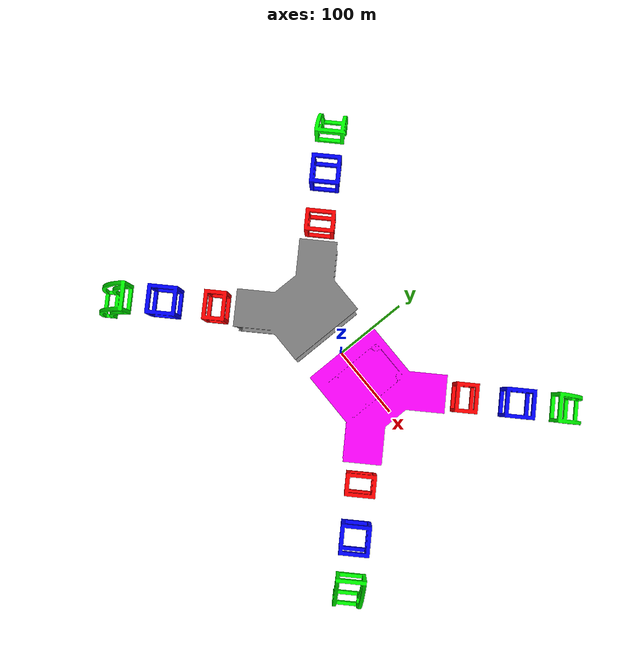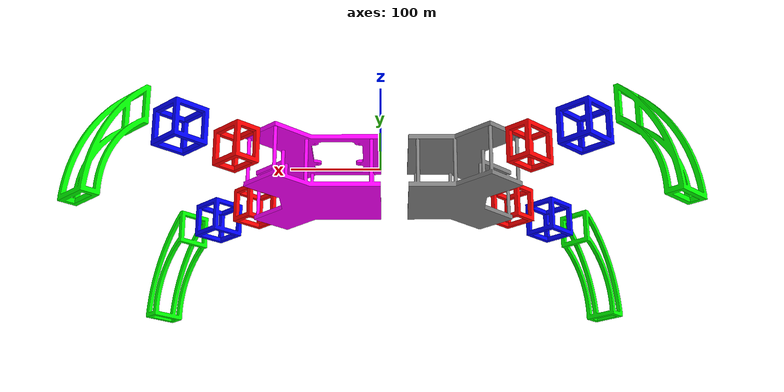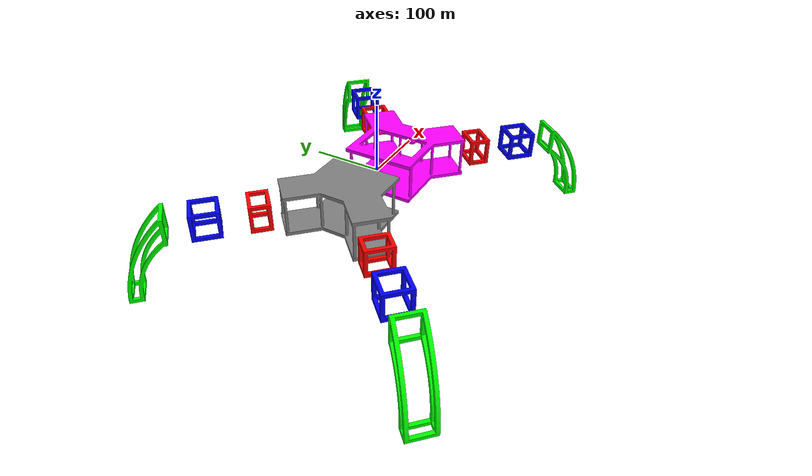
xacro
<?xml version="1.0"?>
<robot name="quaro-body" xmlns:xacro="http://ros.org/wiki/xacro">
  <xacro:property name="pi" value="3.1415"/>
  <xacro:include filename="$(find quaro_description)/urdf/colors.xacro"/>
  <xacro:include filename="$(find quaro_description)/urdf/leg.xacro"/>
  <!-- first link -->
  <link name="front">
    <visual>
      <geometry>
        <mesh filename="package://quaro_description/meshes/front.stl"/>
      </geometry>
      <material name="pink"/>
      <origin rpy="0 0 0" xyz="0 0 20"/>
    </visual>
  </link>

  <link name="back">
    <visual>
      <geometry>
        <mesh filename="package://quaro_description/meshes/back.stl"/>
      </geometry>
      <material name="gray"/>
      <origin rpy="0 0 0" xyz="-15 0 20"/>
    </visual>
  </link>

  <joint name="chest" type="revolute">
    <parent link="front"/>
    <child link="back"/>
    <origin rpy="0 0 0" xyz="-15 0 0"/>
    <axis xyz="0 1 0"/>
    <limit effort="1000.0" lower="${-pi/2}" upper="${pi/2}" velocity="0.5"/>
  </joint>

  <xacro:leg n="0" x="150" y="90" angle="${1*pi/4}" parent="front"/>
  <xacro:leg n="1" x="150" y="-90" angle="-${1*pi/4}" parent="front"/>
  <xacro:leg n="2" x="-140" y="90" angle="${3*pi/4}" parent="back"/>
  <xacro:leg n="3" x="-140" y="-90" angle="-${3*pi/4}" parent="back"/>

</robot>

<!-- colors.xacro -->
<robot name="quaro-colors" xmlns:xacro="http://ros.org/wiki/xacro">

<!-- Materials -->

<material name="black">
  <color rgba="0 0 0 1"/>
</material>

<material name="white">
  <color rgba="1 1 1 1"/>
</material>

<material name="gray">
  <color rgba="0.5 0.5 0.5 1"/>
</material>

<material name="blue">
  <color rgba="0 0 1 1"/>
</material>

<material name="blue_light">
  <color rgba="0 0 0.5 1"/>
</material>

<material name="red">
  <color rgba="1 0 0 1"/>
</material>

<material name="red_light">
  <color rgba="0.5 0 0 1"/>
</material>

<material name="green">
  <color rgba="0 1 0 1"/>
</material>

<material name="green_light">
  <color rgba="0 0.5 0 1"/>
</material>

<material name="cyan">
  <color rgba="1 1 0 1"/>
</material>

<material name="cyan_light">
  <color rgba="0.5 0.5 0 1"/>
</material>

<material name="turcoise">
  <color rgba="0 1 1 1"/>
</material>

<material name="turcoise_light">
  <color rgba="0 0.5 0.5 1"/>
</material>

<material name="pink">
  <color rgba="1 0 1 1"/>
</material>

<material name="pink_light">
  <color rgba="0.5 0 0.5 1"/>
</material>

</robot>

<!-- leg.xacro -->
<robot name="quaro-leg" xmlns:xacro="http://ros.org/wiki/xacro">
  <!-- parameter n is the leg number-->
  <xacro:macro name="leg" params="n x y angle parent">
  <!-- first link -->
  <link name="thigh${n}">
    <visual>
      <geometry>
        <mesh filename="package://quaro_description/meshes/thigh.stl"/>
      </geometry>
      <material name="red"/>
      <origin rpy="${pi/2} 0  ${pi/2}" xyz="-15 -20 -20"/>
    </visual>
  </link>

  <link name="shin${n}">
    <visual>
      <geometry>
        <mesh filename="package://quaro_description/meshes/shin.stl"/>
      </geometry>
      <material name="blue"/>
      <origin rpy="0 0 0" xyz="20 -20 -20"/>
    </visual>
  </link>

  <joint name="knee${n}" type="revolute">
    <parent link="thigh${n}"/>
    <child link="shin${n}"/>
    <origin rpy="${pi/2} 0 0" xyz="30 0 0"/>
    <axis xyz="0 0 1"/>
    <limit effort="1000.0" lower="${-pi/2}" upper="${pi/2}" velocity="0.5"/>
  </joint>

  <link name="foot${n}">
    <visual>
      <geometry>
        <mesh filename="package://quaro_description/meshes/foot.stl"/>
      </geometry>
      <material name="green"/>
      <origin ryp="0 0 0" xyz="20 -105 -20"/>
    </visual>
  </link>

  <joint name="ankle${n}" type="revolute">
    <parent link="shin${n}"/>
    <child link="foot${n}"/>
    <origin rpy="0 0 0" xyz="70 0 0"/>
    <axis xyz="0 0 1"/>
    <limit effort="1000.0" lower="${-pi/2}" upper="${pi/2}" velocity="0.5"/>
  </joint>

  <joint name="hip${n}" type="revolute">
    <parent link="${parent}"/>
    <child link="thigh${n}"/>
    <origin rpy="0 0 ${angle}" xyz="${x} ${y} -10"/>
    <axis xyz="0 0 1"/>
    <limit effort="1000.0" lower="-${pi/2}" upper="${pi/2}" velocity="0.5"/>
  </joint>

</xacro:macro>
</robot>
